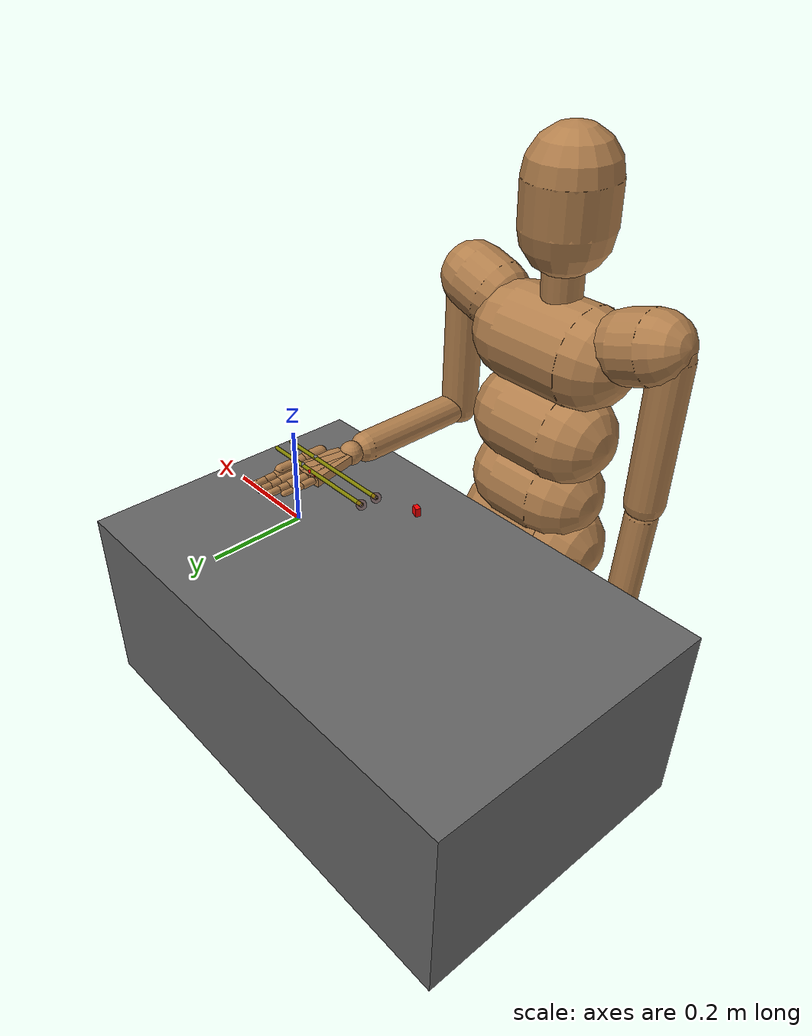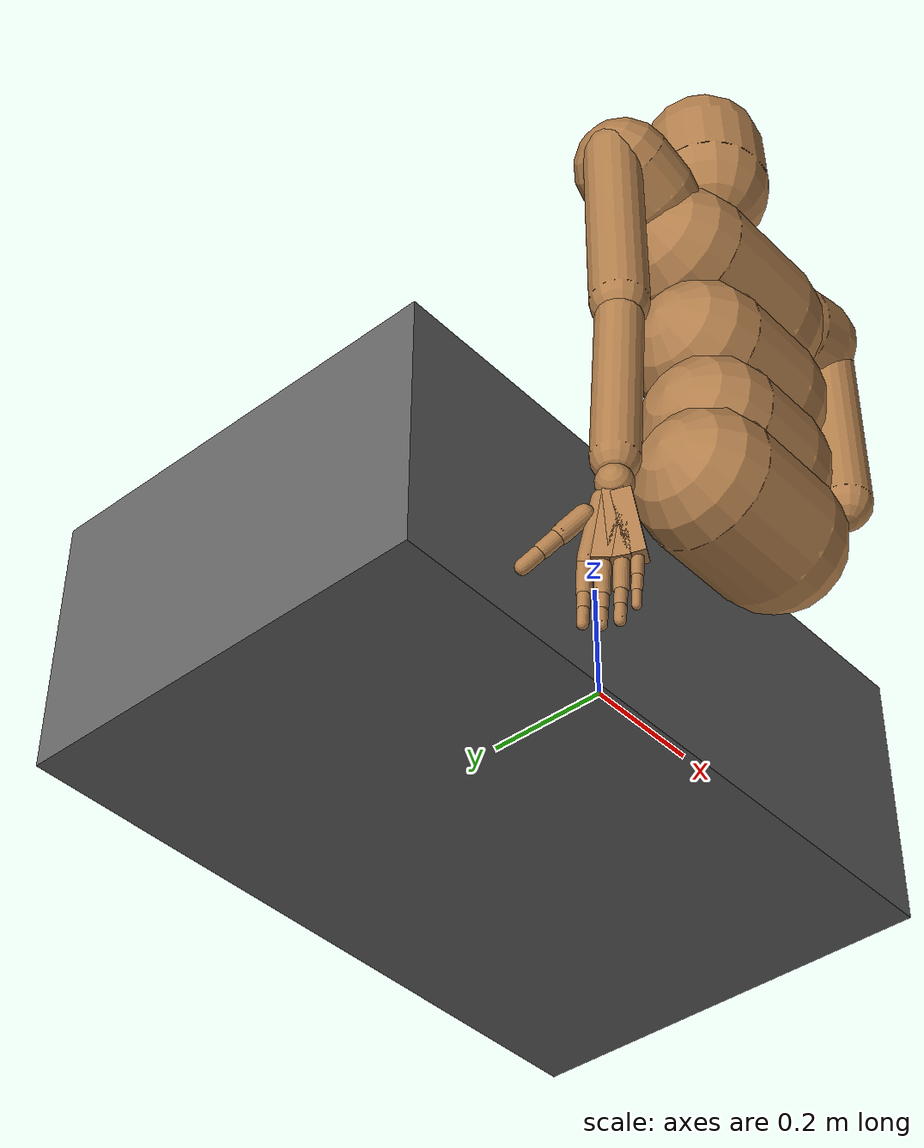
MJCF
<?xml version="1.0" encoding="utf-8"?>
<mujoco>
	<compiler angle="radian"></compiler>
	<size njmax="400" nconmax="400" nuser_jnt="1" nuser_site="1" nuser_tendon="1" nuser_sensor="1" nuser_actuator="16" nstack="600000"></size>
	<option timestep="0.01" iterations="20" apirate="200" impratio="1" noslip_iterations="100"></option>
	<asset>
		<material name="self" rgba=".7 .5 .3 1"></material>
		<material name="table" rgba=".4 .4 .4 1"></material>
		<material name="geom" texture="texgeom" texuniform="true"></material>
		<material name="MatGnd" reflectance="0.5" texture="texplane" texrepeat="2 2" texuniform="true"></material>
		<material name="MatPlane" reflectance="0.05" texture="texplane" texrepeat="1 1" texuniform="true"></material>
		<texture builtin="flat" height="1278" mark="cross" markrgb="1 1 1" name="texgeom" random="0.01" rgb1="0.8 0.6 0.4" rgb2="0.8 0.6 0.4" type="cube" width="127"></texture>
		<texture builtin="gradient" height="100" rgb1="1 1 1" rgb2="0 0 0" type="skybox" width="100"></texture>
		<texture name="texplane" type="2d" builtin="checker" rgb1=".2 .3 .4" rgb2=".1 0.15 0.2" width="512" height="512"></texture>
	</asset>
	<visual>
		<scale forcewidth="0.01" contactwidth="0.003"></scale>
	</visual>
	<default>
		<default class="Adroit">
			<geom friction="1 0.005 0.001" condim="3" margin="0.000" contype="1" conaffinity="1"></geom>
			<joint limited="true" damping="0.05" armature=".001" margin="0.01" frictionloss="0.001"></joint>
			<tendon limited="true"></tendon>
			<site size="0.005" rgba=".4 .9 .4 0"></site>
			<default class="D_Touch">
				<site type="box" size="0.009 0.004 0.013" pos="0 -.004 .018" rgba=".8 .8 .8 0" group="4"></site>
			</default>
			<default class="DC_Hand">
				<geom contype="1" conaffinity="0" material="self" group="2"></geom>
			</default>
		</default>
		<default class="humanoid">
			<geom type="capsule" material="self" group="2"></geom>
			<default class="stiff_medium">
				<joint stiffness="10" damping="2"></joint>
			</default>
			<default class="sensor_site">
				<site type="sphere" size="0.01" group="4" rgba="1 0 0 0"></site>
			</default>
		</default>
	</default>
	<contact>
	    <pair geom1="chopstick1" geom2="C_ff" margin="10" gap="100"></pair>
        <pair geom1="chopstick2" geom2="C_ff" margin="10" gap="100"></pair>
		<pair geom1="chopstick1" geom2="C_mf" margin="10" gap="100"></pair>
        <pair geom1="chopstick2" geom2="C_mf" margin="10" gap="100"></pair>
		<pair geom1="chopstick1" geom2="C_th" margin="10" gap="100"></pair>
        <pair geom1="chopstick2" geom2="C_th" margin="10" gap="100"></pair>
		<pair geom1="chopstick1" geom2="C_rf" margin="10" gap="100"></pair>
        <pair geom1="chopstick2" geom2="C_rf" margin="10" gap="100"></pair>
        <pair geom1="chopstick1" geom2="C_lf" margin="10" gap="100"></pair>
		<pair geom1="chopstick2" geom2="C_lf" margin="10" gap="100"></pair>
		<pair geom1="chopstick2" geom2="C_thm" margin="10" gap="100"></pair>

		<pair geom1="chopstick1" geom2="C_ffproximal" condim = "3" margin="0" gap="0"></pair>
		<pair geom1="chopstick1" geom2="C_ffproximal_trick" margin="10" gap="100"></pair>

		<pair geom1="chopstick2" geom2="C_ff_cmc" condim="4" margin="0" gap="0" friction="3 3" solimp="0.999 0.999 0.01" solref="0.01 1"></pair>
		<pair geom1="chopstick1" geom2="C_ffdistal" condim="4" margin="0" gap="0" friction="3 3" solimp="0.999 0.999 0.01" solref="0.01 1"></pair>
        <pair geom1="chopstick2" geom2="C_ffdistal" condim="4" margin="0" gap="0" friction="3 3" solimp="0.999 0.999 0.01" solref="0.01 1"></pair>
		<pair geom1="chopstick1" geom2="C_mfdistal" condim="4" margin="0" gap="0" friction="3 3" solimp="0.999 0.999 0.01" solref="0.01 1"></pair>
        <pair geom1="chopstick2" geom2="C_mfdistal" condim="4" margin="0" gap="0" friction="3 3" solimp="0.999 0.999 0.01" solref="0.01 1"></pair>
		<pair geom1="chopstick1" geom2="C_thdistal" condim="4" margin="0" gap="0" friction="3 3" solimp="0.999 0.999 0.01" solref="0.01 1"></pair>
		<pair geom1="chopstick2" geom2="C_thdistal" condim="4" margin="0" gap="0" friction="3 3" solimp="0.999 0.999 0.01" solref="0.01 1"></pair>
		<pair geom1="chopstick1" geom2="C_rfdistal" condim="4" margin="0" gap="0" friction="3 3" solimp="0.999 0.999 0.01" solref="0.01 1"></pair>
        <pair geom1="chopstick2" geom2="C_rfdistal" condim="4" margin="0" gap="0" friction="3 3" solimp="0.999 0.999 0.01" solref="0.01 1"></pair>
		<pair geom1="chopstick2" geom2="C_thmiddle" condim="4" margin="0" gap="0" friction="3 3" solimp="0.999 0.999 0.01" solref="0.01 1"></pair>
		<pair geom1="chopstick1" geom2="C_lfdistal" condim="4" margin="0" gap="0" friction="3 3" solimp="0.999 0.999 0.01" solref="0.01 1"></pair>
        <pair geom1="chopstick2" geom2="C_lfdistal" condim="4" margin="0" gap="0" friction="3 3" solimp="0.999 0.999 0.01" solref="0.01 1"></pair>

		<pair geom1="C_rfmiddle" geom2="C_mf" margin="10" gap="100"></pair>
		<pair geom1="C_rfmiddle" geom2="C_mfdistal" margin="10" gap="100"></pair>
		<pair geom1="C_rfmiddle" geom2="C_mfmiddle" margin="10" gap="100"></pair>
		<pair geom1="C_rfmiddle" geom2="C_mfproximal" margin="10" gap="100"></pair>
		<pair geom1="C_rfdistal" geom2="C_mf" margin="10" gap="100"></pair>
		<pair geom1="C_rfdistal" geom2="C_mfmiddle" margin="10" gap="100"></pair>
		<pair geom1="C_rfdistal" geom2="C_mfproximal" margin="10" gap="100"></pair>
		<pair geom1="C_rfproximal" geom2="C_mf" margin="10" gap="100"></pair>
		<pair geom1="C_rfproximal" geom2="C_mfdistal" margin="10" gap="100"></pair>
		<pair geom1="C_rfproximal" geom2="C_mfmiddle" margin="10" gap="100"></pair>
		<pair geom1="C_rfproximal" geom2="C_mfproximal" margin="10" gap="100"></pair>
		<pair geom1="C_mfmiddle" geom2="C_ff" margin="10" gap="100"></pair>
		<pair geom1="C_mfmiddle" geom2="C_ffdistal" margin="10" gap="100"></pair>
		<pair geom1="C_mfmiddle" geom2="C_ffmiddle" margin="10" gap="100"></pair>
		<pair geom1="C_mfmiddle" geom2="C_ffproximal" margin="10" gap="100"></pair>
		<pair geom1="C_mfdistal" geom2="C_ff" margin="10" gap="100"></pair>
		<pair geom1="C_mfdistal" geom2="C_ffmiddle" margin="10" gap="100"></pair>
		<pair geom1="C_mfdistal" geom2="C_ffproximal" margin="10" gap="100"></pair>
		<pair geom1="C_mfproximal" geom2="C_ff" margin="10" gap="100"></pair>
		<pair geom1="C_mfproximal" geom2="C_ffdistal" margin="10" gap="100"></pair>
		<pair geom1="C_mfproximal" geom2="C_ffmiddle" margin="10" gap="100"></pair>
		<pair geom1="C_mfproximal" geom2="C_ffproximal" margin="10" gap="100"></pair>
		<pair geom1="C_rfmiddle" geom2="C_lf" margin="10" gap="100"></pair>
		<pair geom1="C_rfmiddle" geom2="C_lfdistal" margin="10" gap="100"></pair>
		<pair geom1="C_rfmiddle" geom2="C_lfmiddle" margin="10" gap="100"></pair>
		<pair geom1="C_rfmiddle" geom2="C_lfproximal" margin="10" gap="100"></pair>
		<pair geom1="C_rfdistal" geom2="C_lf" margin="10" gap="100"></pair>
		<pair geom1="C_rfdistal" geom2="C_lfmiddle" margin="10" gap="100"></pair>
		<pair geom1="C_rfdistal" geom2="C_lfproximal" margin="10" gap="100"></pair>
		<pair geom1="C_rfproximal" geom2="C_lf" margin="10" gap="100"></pair>
		<pair geom1="C_rfproximal" geom2="C_lfdistal" margin="10" gap="100"></pair>
		<pair geom1="C_rfproximal" geom2="C_lfmiddle" margin="10" gap="100"></pair>
		<pair geom1="C_rfproximal" geom2="C_lfproximal" margin="10" gap="100"></pair>
	</contact>
	<tendon>
		<fixed name="T_FFJ3r" range="-0.018 0.018" user="1204">
			<joint joint="FFJ3" coef="0.010"></joint>
		</fixed>
		<fixed name="T_FFJ3l" range="-0.018 0.018" user="1205">
			<joint joint="FFJ3" coef="-0.010"></joint>
		</fixed>
		<fixed name="T_FFJ2u" range="-0.007 0.030" user="1202">
			<joint joint="FFJ2" coef="0.010"></joint>
		</fixed>
		<fixed name="T_FFJ2d" range="-0.030 0.007" user="1203">
			<joint joint="FFJ2" coef="-0.010"></joint>
		</fixed>
		<fixed name="T_FFJ1c" range="-0.0010 0.0010">
			<joint joint="FFJ0" coef="0.00705"></joint>
			<joint joint="FFJ1" coef="-0.00805"></joint>
		</fixed>
		<fixed name="T_FFJ1u" range="-0.007 0.030" user="1200">
			<joint joint="FFJ0" coef="0.00705"></joint>
			<joint joint="FFJ1" coef="0.00805"></joint>
		</fixed>
		<fixed name="T_FFJ1d" range="-0.030 0.007" user="1201">
			<joint joint="FFJ0" coef="-0.00705"></joint>
			<joint joint="FFJ1" coef="-0.00805"></joint>
		</fixed>
		<fixed name="T_MFJ3r" range="-0.018 0.018" user="1210">
			<joint joint="MFJ3" coef="0.010"></joint>
		</fixed>
		<fixed name="T_MFJ3l" range="-0.018 0.018" user="1211">
			<joint joint="MFJ3" coef="-0.010"></joint>
		</fixed>
		<fixed name="T_MFJ2u" range="-0.007 0.030" user="1208">
			<joint joint="MFJ2" coef="0.010"></joint>
		</fixed>
		<fixed name="T_MFJ2d" range="-0.030 0.007" user="1209">
			<joint joint="MFJ2" coef="-0.010"></joint>
		</fixed>
		<fixed name="T_MFJ1c" range="-0.001 0.001">
			<joint joint="MFJ0" coef="0.00705"></joint>
			<joint joint="MFJ1" coef="-0.00805"></joint>
		</fixed>
		<fixed name="T_MFJ1u" range="-0.007 0.030" user="1206">
			<joint joint="MFJ0" coef="0.00705"></joint>
			<joint joint="MFJ1" coef="0.00805"></joint>
		</fixed>
		<fixed name="T_MFJ1d" range="-0.030 0.007" user="1207">
			<joint joint="MFJ0" coef="-0.00705"></joint>
			<joint joint="MFJ1" coef="-0.00805"></joint>
		</fixed>
		<fixed name="T_RFJ3r" range="-0.018 0.018" user="1216">
			<joint joint="RFJ3" coef="0.010"></joint>
		</fixed>
		<fixed name="T_RFJ3l" range="-0.018 0.018" user="1217">
			<joint joint="RFJ3" coef="-0.010"></joint>
		</fixed>
		<fixed name="T_RFJ2u" range="-0.007 0.030" user="1214">
			<joint joint="RFJ2" coef="0.010"></joint>
		</fixed>
		<fixed name="T_RFJ2d" range="-0.030 0.007" user="1215">
			<joint joint="RFJ2" coef="-0.010"></joint>
		</fixed>
		<fixed name="T_RFJ1c" range="-0.001 0.001">
			<joint joint="RFJ0" coef="0.00705"></joint>
			<joint joint="RFJ1" coef="-0.00805"></joint>
		</fixed>
		<fixed name="T_RFJ1u" range="-0.007 0.030" user="1212">
			<joint joint="RFJ0" coef="0.00705"></joint>
			<joint joint="RFJ1" coef="0.00805"></joint>
		</fixed>
		<fixed name="T_RFJ1d" range="-0.030 0.007" user="1213">
			<joint joint="RFJ0" coef="-0.00705"></joint>
			<joint joint="RFJ1" coef="-0.00805"></joint>
		</fixed>
		<fixed name="T_THJ4a" range="-0.018 0.018" user="1234">
			<joint joint="THJ4" coef="0.01636"></joint>
		</fixed>
		<fixed name="T_THJ4c" range="-0.018 0.018" user="1235">
			<joint joint="THJ4" coef="-0.01636"></joint>
		</fixed>
		<fixed name="T_THJ3u" range="-0.007 0.030" user="1232">
			<joint joint="THJ3" coef="0.010"></joint>
		</fixed>
		<fixed name="T_THJ3d" range="-0.030 0.007" user="1233">
			<joint joint="THJ3" coef="-0.010"></joint>
		</fixed>
		<fixed name="T_THJ2u" range="-0.018 0.018" user="1230">
			<joint joint="THJ2" coef="0.011"></joint>
		</fixed>
		<fixed name="T_THJ2d" range="-0.018 0.018" user="1231">
			<joint joint="THJ2" coef="-0.011"></joint>
		</fixed>
		<fixed name="T_THJ1r" range="-0.018 0.018" user="1228">
			<joint joint="THJ1" coef="0.011"></joint>
		</fixed>
		<fixed name="T_THJ1l" range="-0.018 0.018" user="1229">
			<joint joint="THJ1" coef="-0.011"></joint>
		</fixed>
		<fixed name="T_THJ0r" range="-0.030 0.007" user="1226">
			<joint joint="THJ0" coef="0.009"></joint>
		</fixed>
		<fixed name="T_THJ0l" range="-0.007 0.030" user="1227">
			<joint joint="THJ0" coef="-0.009"></joint>
		</fixed>
		<fixed name="T_LFJ3r" range="-0.018 0.018">
			<joint joint="LFJ3" coef="0.010"></joint>
		</fixed>
		<fixed name="T_LFJ3l" range="-0.018 0.018">
			<joint joint="LFJ3" coef="-0.010"></joint>
		</fixed>
		<fixed name="T_LFJ2u" range="-0.007 0.030">
			<joint joint="LFJ2" coef="0.010"></joint>
		</fixed>
		<fixed name="T_LFJ2d" range="-0.030 0.007">
			<joint joint="LFJ2" coef="-0.010"></joint>
		</fixed>
		<fixed name="T_LFJ1c" range="-0.001 0.001">
			<joint joint="LFJ0" coef="0.00705"></joint>
			<joint joint="LFJ1" coef="-0.00805"></joint>
		</fixed>
		<fixed name="T_LFJ1u" range="-0.007 0.030">
			<joint joint="LFJ0" coef="0.00705"></joint>
			<joint joint="LFJ1" coef="0.00805"></joint>
		</fixed>
		<fixed name="T_LFJ1d" range="-0.030 0.007">
			<joint joint="LFJ0" coef="-0.00705"></joint>
			<joint joint="LFJ1" coef="-0.00805"></joint>
		</fixed>
	</tendon>
	<sensor>
		<touch name="sensor_end1" site="end1"></touch>
		<touch name="sensor_end2" site="end2"></touch>
		<touch name="sensor_th" site="S_thtip"></touch>
		<touch name="sensor_ff" site="S_fftip"></touch>
		<touch name="sensor_mf" site="S_mftip"></touch>
		<touch name="sensor_rf" site="S_rftip"></touch>
	</sensor>
	<equality>
		<connect body1="chopstick1" body2="thdistal" anchor="0.045 0.0 0.0025" active="false"></connect>
		<connect body1="chopstick2" body2="thmiddle" anchor="0.05 0.0 0.0025" active="false"></connect>
	</equality>
	<actuator>
		<motor name="A_UARM1" joint="UARM1" ctrlrange="-100   100" gear="1"></motor>
		<motor name="A_UARM2" joint="UARM2" ctrlrange="-100   100" gear="1"></motor>
		<motor name="A_UARM3" joint="UARM3" ctrlrange="-100   100" gear="1"></motor>
		<motor name="A_FARM1" joint="FARM1" ctrlrange="-100   100" gear="1"></motor>
		<motor name="A_WRJ0" user="2036" joint="WRJ0" ctrlrange="-50   50" gear="1"></motor>
		<motor name="A_WRJ1" user="2038" joint="WRJ1" ctrlrange="-50   50" gear="1"></motor>
		<motor name="A_WRJ2" joint="WRJ2" ctrlrange="-50   50" gear="1"></motor>
		<motor name="A_FFJ_CMC_X" joint="FFJ_CMC_X" ctrlrange="-10   10" gear="1"></motor>
		<motor name="A_FFJ_CMC_Z" joint="FFJ_CMC_Z" ctrlrange="-10   10" gear="1"></motor>
		<motor name="A_FFJ3" user="2004" joint="FFJ3" ctrlrange="-10   10" gear="1"></motor>
		<motor name="A_FFJ2" user="2002" joint="FFJ2" ctrlrange="-10      10 " gear="1"></motor>
		<motor name="A_FFJ1" user="2000" joint="FFJ1" ctrlrange="-10       10 " gear="1"></motor>
		<motor name="A_FFJ0" user="2000" joint="FFJ0" ctrlrange="-10     10 " gear="1"></motor>
		<motor name="A_MFJ_CMC_X" joint="MFJ_CMC_X" ctrlrange="-10   10" gear="1"></motor>
		<motor name="A_MFJ_CMC_Z" joint="MFJ_CMC_Z" ctrlrange="-10   10" gear="1"></motor>
		<motor name="A_MFJ3" user="2010" joint="MFJ3" ctrlrange="-10   10" gear="1"></motor>
		<motor name="A_MFJ2" user="2008" joint="MFJ2" ctrlrange="-10       10 " gear="1"></motor>
		<motor name="A_MFJ1" user="2006" joint="MFJ1" ctrlrange="-10       10 " gear="1"></motor>
		<motor name="A_MFJ0" user="2006" joint="MFJ0" ctrlrange="-10       10 " gear="1"></motor>
		<motor name="A_RFJ_CMC_X" joint="RFJ_CMC_X" ctrlrange="-10   10" gear="1"></motor>
		<motor name="A_RFJ_CMC_Z" joint="RFJ_CMC_Z" ctrlrange="-10   10" gear="1"></motor>
		<motor name="A_RFJ3" user="2016" joint="RFJ3" ctrlrange="-10   10" gear="1"></motor>
		<motor name="A_RFJ2" user="2014" joint="RFJ2" ctrlrange="-10       10 " gear="1"></motor>
		<motor name="A_RFJ1" user="2012" joint="RFJ1" ctrlrange="-10       10 " gear="1"></motor>
		<motor name="A_RFJ0" user="2012" joint="RFJ0" ctrlrange="-10       10 " gear="1"></motor>
		<motor name="A_THJ4" user="2034" joint="THJ4" ctrlrange="-10      10   " gear="1"></motor>
		<motor name="A_THJ3" user="2032" joint="THJ3" ctrlrange="-10      10 " gear="1"></motor>
		<motor name="A_THJ2" user="2030" joint="THJ2" ctrlrange="-10   10" gear="1"></motor>
		<motor name="A_THJ1" user="2028" joint="THJ1" ctrlrange="-10   10" gear="1"></motor>
		<motor name="A_THJ0" user="2026" joint="THJ0" ctrlrange="-10  10   " gear="1"></motor>
		<motor name="A_LFJ_CMC_X" joint="LFJ_CMC_X" ctrlrange="-10   10" gear="1"></motor>
		<motor name="A_LFJ_CMC_Z" joint="LFJ_CMC_Z" ctrlrange="-10   10" gear="1"></motor>
		<motor name="A_LFJ3" user="2022" joint="LFJ3" ctrlrange="-10      10 " gear="1"></motor>
		<motor name="A_LFJ2" user="2020" joint="LFJ2" ctrlrange="-10      10 " gear="1"></motor>
		<motor name="A_LFJ1" user="2019" joint="LFJ1" ctrlrange="-10      10 " gear="1"></motor>
		<motor name="A_LFJ0" user="2018" joint="LFJ0" ctrlrange="-10      10 " gear="1"></motor>
	</actuator>
	<worldbody>
		<light diffuse="1 1 1" dir="-1.3 1.3 -1.3" directional="true" exponent="1" pos="0 0 1.3" specular=".1 .1 .1" castshadow="false"></light>
		<geom name="table" pos="-0.24 0 -0.2" size="0.5 0.315 0.2" material="table" type="box" contype="1" conaffinity="1"></geom>

		<body name="hand mount" pos="0 -.45 0.2" euler="-1.57079632 0 0">
			<inertial mass="0.100" pos="0 0 0" diaginertia="0.001 0.001 0.001"></inertial>
			<body name="upperarm" childclass="Adroit" pos="0 -0.2 0">
				<joint name="UARM1" type="hinge" pos="0 0 0" axis="1 0 0" range="-1.57 1.57" damping="0" armature="1"></joint>
				<geom class="DC_Hand" name="C_upperarm1" type="sphere" size="0.001"></geom>
				<body name="upperarm2" pos="0 0 0">
					<geom class="DC_Hand" name="C_upperarm2" type="sphere" size="0.001"></geom>
					<joint name="UARM2" type="hinge" pos="0 0 0" axis="0 0 1" range="-1.57 0" damping="0" armature="1"></joint>
					<body name="upperarm3" pos="0 0 0">
						<joint name="UARM3" type="hinge" pos="0 0 0" axis="0 -1 0" range="-1.57 1.57" damping="0" armature="1"></joint>
						<geom class="DC_Hand" name="C_upperarm" type="capsule" size="0.04 0.15 " pos="0 0.15 0" euler="-1.57 0 0"></geom>
						<body name="forearm" childclass="Adroit" pos="0 0.3 0" euler="0 0 0">
							<inertial pos="0.001 -0.002 0.15" quat="0.982 -0.016 0.000 -0.188" mass="4" diaginertia="0.01 0.01 0.0075"></inertial>
							<joint name="FARM1" type="hinge" pos="0 0 0" axis="1 0 0" range="-1.57 1.57" damping="0" armature="1"></joint>
							<geom class="DC_Hand" name="C_forearm" type="capsule" size="0.0325 0.12 " pos="0 -.0 0.15" euler="0 0 -1.57"></geom>
							<body name="wrist" pos="0 0 0.3">
								<inertial pos="0.003 0.000 0.016" quat="0.504 0.496 0.495 0.504" mass="0.3" diaginertia="0.001 0.001 0.001"></inertial>
								<joint name="WRJ0" type="hinge" pos="0 0 0" axis="1 0 0" range="-1 1" damping="0" armature=".005" user="1122"></joint>
								<body name="wrist1" pos="0 0 0">
									<geom class="DC_Hand" name="C_wrist1" type="sphere" size="0.001"></geom>
									<joint name="WRJ1" type="hinge" pos="0 0 0" axis="0 1 0" range="-1.2 1.2" damping="0" armature=".005" user="1123"></joint>
									<body name="wrist2" pos="0 0 0">
										<joint name="WRJ2" type="hinge" pos="0 0 0" axis="0 0 1" range="-3.14 0" damping="0" armature=".005"></joint>
										<geom class="DC_Hand" name="C_wrist" type="sphere" pos="0 0 0.01" quat=".707 .707 0 0" size=".025"></geom>
										<body name="palm" pos="0 0 0.034">
											<body name="ff_cmc" pos="0.033 0 0.095">
												<joint name="FFJ_CMC_X" type="hinge" pos="-0.02 0 -0.095" axis="0.095 0 -0.02" range="0 0.001"></joint>
												<joint name="FFJ_CMC_Z" type="hinge" pos="-0.02 0 -0.095" axis="0.02 0 0.095" range="-0.001 0.001"></joint>
												<geom class="DC_Hand" name="C_ff_cmc" type="capsule" pos="-0.01 0 -0.0475" size="0.013 .0475" euler="0 0.16 0"></geom>
												<body name="ffknuckle" pos="0.0 0 0.0">
													<inertial pos="-0.000 0.000 0.000" quat="0.520 0.854 0.006 -0.003" mass="0.008" diaginertia="0.00001 0.00001 0.00001"></inertial>
													<joint name="FFJ3" type="hinge" pos="0 0 0" axis="0 1 0" range="-0.136 0.136" user="1103"></joint>
													<body name="ffproximal" pos="0 0 0">
														<inertial pos="0.000 0.000 0.023" quat="0.707 -0.004 0.004 0.707" mass="0.014" diaginertia="0.00001 0.00001 0.00001"></inertial>
														<joint name="FFJ2" type="hinge" pos="0 0 0" axis="1 0 0" range="0 1.571" user="1102"></joint>
														<geom class="DC_Hand" name="C_ffproximal" type="capsule" pos="0 0 .0225" size=".01 .0225"></geom>
														<geom class="DC_Hand" name="C_ffproximal_trick" type="capsule" pos="0 0 .0225" size=".01 .0225"></geom>
                                                        <body name="ffmiddle" pos="0 0 0.045">
															<inertial pos="-0.000 -0.000 0.011" quat="0.707 0.000 -0.000 0.707" mass="0.012" diaginertia="0.00001 0.00001 0.00001"></inertial>
															<joint name="FFJ1" type="hinge" pos="0 0 0" axis="1 0 0" range="0 1.571" user="1101"></joint>
															<geom class="DC_Hand" name="C_ffmiddle" type="capsule" pos="0 0 .0125" size=".00805 .0125"></geom>
															<body name="ffdistal" pos="0 0 0.025">
																<inertial pos="0 -0.000 0.015" quat="0.707 -0.003 0.003 0.707" mass="0.010" diaginertia="0.00001 0.00001 0.00001"></inertial>
																<joint name="FFJ0" type="hinge" pos="0 0 0" axis="1 0 0" range="0 1.571" user="1100"></joint>
																<geom class="DC_Hand" name="C_ffdistal" type="capsule" pos="0 -.00 .012" size=".0075 .011 " condim="4" euler="0 0 0"></geom>
																<geom class="DC_Hand" name="C_ff" type="sphere" pos="0 0 .0195" size=".0075 " condim="4"></geom>
																<site name="S_fftip" type="capsule" pos="0 -.00 .012" size=".0075 .011 " rgba = '0 0 0 0' euler="0 0 0"></site>
																<site class="D_Touch" name="Tch_fftip"></site>
															</body>
														</body>
													</body>
												</body>
											</body>
											<body name="mf_cmc" pos="0.011 0 0.099">
												<joint name="MFJ_CMC_X" type="hinge" pos="-0.011 0 -0.099" axis="0.099 0 -0.011" range="0 0.01"></joint>
												<joint name="MFJ_CMC_Z" type="hinge" pos="-0.011 0 -0.099" axis="0.011 0 0.099" range="-0.2 0.2"></joint>
												<geom class="DC_Hand" name="C_mf_cmc" type="box" pos="-0.0055 0 -0.0495" size=".013 0.01 .052" euler="0 0.11 0"></geom>
												<body name="mfknuckle" pos="0.0 0 0.0">
													<inertial pos="-0.000 0.000 0.000" quat="0.520 0.854 0.006 -0.003" mass="0.008" diaginertia="0.00001 0.00001 0.00001"></inertial>
													<joint name="MFJ3" type="hinge" pos="0 0 0" axis="0 1 0" range="-0.136 0.136" user="1107"></joint>
													<body name="mfproximal" pos="0 0 0">
														<inertial pos="0.000 0.000 0.023" quat="0.707 -0.004 0.004 0.707" mass="0.014" diaginertia="0.00001 0.00001 0.00001"></inertial>
														<joint name="MFJ2" type="hinge" pos="0 0 0" axis="1 0 0" range="0 1.571" user="1106"></joint>
														<geom class="DC_Hand" name="C_mfproximal" type="capsule" pos="0 0 .0225" size=".01 .0225"></geom>
														<body name="mfmiddle" pos="0 0 0.045">
															<inertial pos="-0.000 -0.000 0.012" quat="0.707 0.000 -0.000 0.707" mass="0.012" diaginertia="0.00001 0.00001 0.00001"></inertial>
															<joint name="MFJ1" type="hinge" pos="0 0 0" axis="1 0 0" range="0 1.571" user="1105"></joint>
															<geom class="DC_Hand" name="C_mfmiddle" type="capsule" pos="0 0 .0125" size=".00805 .0125"></geom>
															<body name="mfdistal" pos="0 0 0.025">
																<inertial pos="0 -0.000 0.015" quat="0.707 -0.003 0.003 0.707" mass="0.010" diaginertia="0.00001 0.00001 0.00001"></inertial>
																<joint name="MFJ0" type="hinge" pos="0 0 0" axis="1 0 0" range="0 1.571" user="1104"></joint>
																<geom class="DC_Hand" name="C_mfdistal" type="capsule" pos="0 0 .012" size=".0075 .011 " condim="4" euler="0 0 0"></geom>
																<geom class="DC_Hand" name="C_mf" type="sphere" pos="0 0 .025" size=".0075 " condim="4"></geom>
																<site name="S_mftip" type="capsule" pos="0 0 .012" size=".0075 .011 "  rgba = '0 0 0 0' euler="0 0 0"></site>
																<site class="D_Touch" name="Tch_mftip"></site>
															</body>
														</body>
													</body>
												</body>
											</body>
											<body name="rf_cmc" pos="-0.011 0 0.095">
												<joint name="RFJ_CMC_X" type="hinge" pos="0.011 0 -0.095" axis="0.095 0 0.011" range="0 0.2"></joint>
												<joint name="RFJ_CMC_Z" type="hinge" pos="0.011 0 -0.095" axis="-0.011 0 0.095" range="-0.0 0.69"></joint>
												<geom class="DC_Hand" name="C_rf_cmc" type="box" pos="0.0055 0 -0.0475" size=".013  0.01 .055" euler="0 -0.11 0"></geom>
												<body name="rfknuckle" pos="-0.0 0 0.0">
													<inertial pos="-0.000 0.000 0.000" quat="0.520 0.854 0.006 -0.003" mass="0.008" diaginertia="0.00001 0.00001 0.00001"></inertial>
													<joint name="RFJ3" type="hinge" pos="0 0 0" axis="0 1 0" range="-0.136 0.136" user="1111"></joint>
													<body name="rfproximal" pos="0 0 0">
														<inertial pos="0.000 0.000 0.023" quat="0.707 -0.004 0.004 0.707" mass="0.014" diaginertia="0.00001 0.00001 0.00001"></inertial>
														<joint name="RFJ2" type="hinge" pos="0 0 0" axis="1 0 0" range="0 1.571" user="1110"></joint>
														<geom class="DC_Hand" name="C_rfproximal" type="capsule" pos="0 0 .0225" size=".01 .0225"></geom>
														<body name="rfmiddle" pos="0 0 0.045">
															<inertial pos="-0.000 -0.000 0.012" quat="0.707 0.000 -0.000 0.707" mass="0.012" diaginertia="0.00001 0.00001 0.00001"></inertial>
															<joint name="RFJ1" type="hinge" pos="0 0 0" axis="1 0 0" range="0 1.571" user="1109"></joint>
															<geom class="DC_Hand" name="C_rfmiddle" type="capsule" pos="0 0 .0125" size=".00805 .0125"></geom>
															<body name="rfdistal" pos="0 0 0.025">
																<inertial pos="0 -0.000 0.015" quat="0.707 -0.003 0.003 0.707" mass="0.010" diaginertia="0.00001 0.00001 0.00001"></inertial>
																<joint name="RFJ0" type="hinge" pos="0 0 0" axis="1 0 0" range="0 1.571" user="1108"></joint>
																<geom class="DC_Hand" name="C_rfdistal" type="capsule" pos="0 -.0 .012" size=".0075 .011 " condim="4" euler="0 0 0"></geom>
																<geom class="DC_Hand" name="C_rf" type="sphere" pos="0 -.0 .016" size=".0075 " condim="4"></geom>
																<site name="S_rftip" type="capsule" pos="0 0 .012" size=".0075 .011 " rgba = '0 0 0 0' euler="0 0 0"></site>
																<site class="D_Touch" name="Tch_rftip"></site>
															</body>
														</body>
													</body>
												</body>
											</body>
											<body name="thbase" pos="0.034 -0.009 0.029" euler="0.  0. 0">
												<inertial pos="0 0 0" mass="0.010" diaginertia="0.00001 0.00001 0.00001"></inertial>
												<joint name="THJ4" type="hinge" pos="0 0 0" axis="0 0 -1" range="-0.01 0.01" user="1121"></joint>
												<joint name="THJ2" type="hinge" pos="0 0 0" axis="0 1 0" range="-1 1" user="1119"></joint>
												<joint name="THJ3" type="hinge" pos="0 0 0" axis="1 0 0" range="-0. 1" user="1120"></joint>
												<body name="thproximal" pos="0 0 0" euler = "0 0 -0.">

													<inertial pos="-0.000 -0.000 0.017" quat="0.982 -0.000 0.001 0.191" mass="0.016" diaginertia="0.00001 0.00001 0.00001"></inertial>
													<geom class="DC_Hand" name="C_thproximal" type="capsule" pos="0 0 .019" size=".013 .019"></geom>
													<body name="thmiddle" pos="0 0 0.038">
														<inertial pos="0.000 -0.000 0.016" quat="1.000 -0.001 -0.007 0.003" mass="0.016" diaginertia="0.00001 0.00001 0.00001"></inertial>
														<joint name="THJ1" type="hinge" pos="0 0 0" axis="0 1 0" range="-1.57 0" user="1118"></joint>
														<geom class="DC_Hand" name="C_thmiddle" type="capsule" pos="0 0 .016" size=".011 .016"></geom>
														<geom class="DC_Hand" name="C_thm" type="capsule" pos="0 0 .016" size=".011 .016"></geom>
														<body name="thdistal" pos="0 0 0.032">
															<inertial pos="0.000 -0.000 0.016" quat="0.999 -0.005 -0.047 0.005" mass="0.016" diaginertia="0.00001 0.00001 0.00001"></inertial>
															<joint name="THJ0" type="hinge" pos="0 0 0" axis="0 1 0" range="-1.571 -0.1" user="1117"></joint>
															<geom class="DC_Hand" name="C_thdistal" type="capsule" pos="0 0 .016837" size=".01 .015" condim="4" euler="0 0 0"></geom>
															<geom class="DC_Hand" name="C_th" type="sphere" pos="-0.01 -0.0 .021837" size=".003" rgba= ' 0 0 0 0'></geom>
															<site name="S_thtip" type="sphere" pos="-0.0 -0. .021837" size=".005 " rgba = '0 0 0 0' euler="0 0 0"></site>
															<site class="D_Touch" name="Tch_thtip" size="0.005 0.011 0.016" pos="-.005 0 0.02"></site>
														</body>
													</body>
												</body>
											</body>
											<body name="lf_cmc" pos="-0.03 0 0.095">
												<joint name="LFJ_CMC_X" type="hinge" pos="0.03 0 -0.095" axis="0.095 0 0.02" range="0 0.2"></joint>
												<joint name="LFJ_CMC_Z" type="hinge" pos="0.03 0 -0.095" axis="-0.02 0 0.095" range="0 0.9"></joint>
												<geom class="DC_Hand" name="C_lf_cmc" type="box" pos="0.01 0 -0.0475" size=".013 0.01 .052" euler="0 -0.2 0"></geom>
												<body name="lfknuckle" pos="-0.0 0 0.0">
													<inertial pos="-0.000 0.000 0.000" quat="0.520 0.854 0.006 -0.003" mass="0.008" diaginertia="0.00001 0.00001 0.00001"></inertial>
													<joint name="LFJ3" type="hinge" pos="0 0 0" axis="0 1 0" range="-0.136 0.136" user="1115"></joint>
													<body name="lfproximal" pos="0 0 0">
														<joint name="LFJ2" type="hinge" pos="0 0 0" axis="1 0 0" range="0 1.571" user="1114"></joint>
														<geom class="DC_Hand" name="C_lfproximal" type="capsule" pos="0 0 .0125" size=".008 .015"></geom>
														<body name="lfmiddle" pos="0 0 0.025">
															<joint name="LFJ1" type="hinge" pos="0 0 0" axis="1 0 0" range="0 1.571" user="1113"></joint>
															<geom class="DC_Hand" name="C_lfmiddle" type="capsule" pos="0 0 .0125" size=".00705 .0125"></geom>
															<body name="lfdistal" pos="0 0 0.025">
																<joint name="LFJ0" type="hinge" pos="0 0 0" axis="1 0 0" range="0 1.571"></joint>
																<geom class="DC_Hand" name="C_lfdistal" type="capsule" pos="0 0 .012" size=".006 .011 " condim="4" euler="0 0 0"></geom>
																<geom class="DC_Hand" name="C_lf" type="sphere" pos="0.00 0 .016" size=".006 "></geom>
																<site name="S_lftip" type="capsule" pos="0 0 .012" size=".006 .011 " rgba = '0 0 0 0' euler="0 0 0"></site>
															</body>
														</body>
													</body>
												</body>
											</body>
										</body>
									</body>
								</body>
							</body>
						</body>
					</body>
				</body>
			</body>
		</body>
		<body name="chopstick1" pos="-0.07 -0.0 0.14">
			<joint name="chopstick1" type="free" armature="0.0001"></joint>
			<geom name="chopstick1" density="1000" condim="4" size="0.004 0.13" pos="0.0 -0.0 0.0" type="capsule" quat="0.707 0 0.707 0" solimp="0.99 0.99 0.01" solref="0.01 1" friction="1 0.005 0.0001" rgba="0.5  0.5 0. 1"></geom>
			<geom name="chopstick1_end" density="1" size="0.004" pos="-0.13 -0.0 0.0" type="sphere" quat="0.707 0 0.707 0"></geom>
			<site name="end1" pos="-0.13 0.0 0.00" size=".01" type="sphere" rgba="0.5 0 0 0.2"></site>
			<site name="c_joint" pos="0.045 0.0 0.0" size=".004" type="sphere"></site>
			<site name="c_thtip" pos="0.045 0.0 0.0025" size=".004" type="sphere" user = '1'></site>
		</body>
		<body name="chopstick2" pos="-0.07 -0.035 0.14">
			<joint name="chopstick2" type="free" armature="0.0001"></joint>
			<geom name="chopstick2" density="1000" condim="4" size="0.004 0.13" pos="-0.0 -0.0 0.0" type="capsule" quat="0.707 0 0.707 0" solimp="0.99 0.99 0.01" solref="0.01 1" friction="1 0.005 0.0001" rgba="0.5  0.5 0. 1"></geom>
			<geom name="chopstick2_end" density="1" size="0.004" pos="-0.13 -0.0 0.0" type="sphere" quat="0.707 0 0.707 0"></geom>
			<site name="c_thmiddle" pos="0.05 0.0 0.0025" size=".004" type="sphere" user = '2'></site>
			<site name="end2" pos="-0.13 0.0 0.0" size=".01" type="sphere" rgba="0.5 0 0 0.2"></site>
			<site name="origin" pos="-0. 0.0 0.0" size=".01" type="sphere" rgba="1 0 0 0."></site>
		</body>
		<body name="chopstick2_v" pos="-0.07 -0.035 0.14">
			<joint name="chopstick2_v" type="free" armature="0.0001"></joint>
			<geom name="chopstick2_v" density="1000" condim="4" size="0.004 0.13" pos="0.0 -0.0 0.0" type="capsule" contype="0" conaffinity="0" solimp="0.99 0.99 0.01" solref="0.01 1" quat="0.707 0 0.707 0" friction="1 0.005 0.0001" rgba="0  0.5 0. 0.7"></geom>
			<site name="origin_v" pos="-0. 0.0 0.0" size=".01" type="sphere" rgba="0 0 0 0."></site>
			<site name="end2_v" pos="-0.13 0.0 0.00" size=".0025" type="sphere" group="4"></site>
			<body name="chopstick1_v" pos="0.045 0.035 0.0">
				<joint name="Rz1_v" armature=".01" type="hinge" pos="0 0 0" axis="0 0 1" range="-0.5 0.5"></joint>
				<geom name="chopstick1_v" density="1000" condim="4" size="0.004 0.13" pos="-0.045 -0.0 0.0" type="capsule" contype="0" conaffinity="0" solimp="0.99 0.99 0.01" solref="0.01 1" quat="0.707 0 0.707 0" friction="1 0.005 0.0001" rgba="0  0.5 0. 0.7"></geom>
				<site name="c_thtip_v" pos="0.0 0.0 0.0025" size=".004" type="sphere" rgba="1 0 0 1"></site>
				<site name="c_mftip_v" pos="-0.04 0.0 -0.0025" size=".004" type="sphere" rgba="1 0 0 1"></site>
				<site name="c_fftip_v" pos="-0.025 0.0025 0.00" size=".004" type="sphere" rgba="1 0 0 1"></site>
				<site name="end1_v" pos="-0.175 0.0 0.0" size=".0025" type="sphere" group="4"></site>
			</body>
		</body>

		<body name="root" pos="-0.25 -0.44 0.02" euler="1.57 0 0" childclass="humanoid">
			<body name="lowerback">
				<body name="upperback" pos="0.000565862 0.113213 0">
					<geom name="upperback" size="0.1 0.07" pos="0.000256264 -0.22 0" quat="0.707 0 0.707 0" contype="0" conaffinity="0"></geom>
					<body name="thorax" pos="0.000512528 0.11356 0.000">
						<geom name="thorax1" size="0.1 0.05" pos="-2.08988e-05 -0.22 0" quat="0.707 0 0.707 0" contype="0" conaffinity="0"></geom>
						<geom name="thorax2" size="0.1 0.06" pos="-2.08988e-05 -0.08 0" quat="0.707 0 0.707 0" contype="0" conaffinity="0"></geom>
						<body name="lowerneck" pos="-4.17976e-05 0.113945 0.0">
							<geom name="lowerneck" size="0.1 0.08" pos="-0.00165071 -0.02 0." quat="0.707 0 0.707 0" contype="0" conaffinity="0"></geom>
							<body name="upperneck" pos="-0.00330143 0.1104801 0.0">
								<geom name="upperneck" size="0.04 0.0525272" pos="0.000500875 0.0 -0.0" quat="0.724521 0.68921 -0.00767204 0" contype="0" conaffinity="0"></geom>
								<body name="head" pos="0.00100175 0.0899912 -0.00449288">
									<geom name="head" size="0.09 0.044104" pos="0.000341465 0.048184 -0.0" quat="0.717887 0.696142 -0.00493334 0" contype="0" conaffinity="0"></geom>
								</body>
							</body>
						</body>
						<body name="lclavicle" pos="-4.17976e-05 0.113945 0.00468037">
							<geom name="lclavicle" size="0.07 0.02986988" pos="0.19 0.0382636 0." quat="0.684 -0.1106 0.6984 0.1106" contype="0" conaffinity="0"></geom>
						</body>
						<body name="rclavicle" pos="-4.17976e-05 0.113945 0.00468037">
							<geom name="rclavicle" size="0.07 0.02986988" pos="-0.19 0.0382636 0." quat="0.698 0.110 0.698 -0.11" contype="0" conaffinity="0"></geom>
						</body>
					</body>
				</body>
			</body>
		</body>

		<body name="hand mount right" pos="-0.5 -.45 0.2" euler="-1.57079632 0 0">
			<body name="upperarm_right" childclass="Adroit" pos="0 -0.2 0">
				<body name="upperarm2_right" pos="0 0 0">
					<body name="upperarm3_right" pos="0 0 0" euler = '0 0 -0. '>
						<geom class="DC_Hand" name="C_upperarm_right" type="capsule" size="0.04 0.15 " pos="0 0.15 0" euler="-1.57 0 0"></geom>
						<body name="forearm_right" childclass="Adroit" pos="0 0.3 0" euler = '-1.5 -0. -0.5 '>
							<geom class="DC_Hand" name="C_forearm_right" type="capsule" size="0.0325 0.12 " pos="0 -.0 0.15" euler="0 0 -1.57"></geom>
							<body name="wrist_right" pos="0 0 0.3" euler = '0 0 0'>
								<body name="wrist1_right" pos="0 0 0">
									<geom class="DC_Hand" name="C_wrist1_right" type="sphere" size="0.001"></geom>
									<body name="wrist2_right" pos="0 0 0" euler = '0  0 -1.57 '>
										<geom class="DC_Hand" name="C_wrist_right" type="sphere" pos="0 0 0.01" quat=".707 .707 0 0" size=".025"></geom>
										<body name="palm_right" pos="0 0 0.034">
											<body name="ff_cmc_right" pos="0.033 0 0.095">
												<geom class="DC_Hand" name="C_ff_cmc_right" type="capsule" pos="-0.01 0 -0.0475" size="0.013 .0475" euler="0 0.16 0"></geom>
												<body name="ffknuckle_right" pos="0.0 0 0.0">
													<body name="ffproximal_right" pos="0 0 0">
														<inertial pos="0.000 0.000 0.023" quat="0.707 -0.004 0.004 0.707" mass="0.014" diaginertia="0.00001 0.00001 0.00001"></inertial>
														<geom class="DC_Hand" name="C_ffproximal_right" type="capsule" pos="0 0 .0225" size=".01 .0225"></geom>
														<body name="ffmiddle_right" pos="0 0 0.045">
															<geom class="DC_Hand" name="C_ffmiddle_right" type="capsule" pos="0 0 .0125" size=".00805 .0125"></geom>
															<body name="ffdistal_right" pos="0 0 0.025">
																<geom class="DC_Hand" name="C_ffdistal_right" type="capsule" pos="0 -.00 .012" size=".0075 .011 " condim="4" euler="0 0 0"></geom>
															</body>
														</body>
													</body>
												</body>
											</body>
											<body name="mf_cmc_right" pos="0.011 0 0.099">
												<geom class="DC_Hand" name="C_mf_cmc_right" type="box" pos="-0.0055 0 -0.0495" size=".013 0.013 .052" euler="0 0.11 0"></geom>
												<body name="mfknuckle_right" pos="0.0 0 0.0">
													<inertial pos="-0.000 0.000 0.000" quat="0.520 0.854 0.006 -0.003" mass="0.008" diaginertia="0.00001 0.00001 0.00001"></inertial>
													<body name="mfproximal_right" pos="0 0 0">
														<geom class="DC_Hand" name="C_mfproximal_right" type="capsule" pos="0 0 .0225" size=".01 .0225"></geom>
														<body name="mfmiddle_right" pos="0 0 0.045">
															<geom class="DC_Hand" name="C_mfmiddle_right" type="capsule" pos="0 0 .0125" size=".00805 .0125"></geom>
															<body name="mfdistal_right" pos="0 0 0.025">
																<geom class="DC_Hand" name="C_mfdistal_right" type="capsule" pos="0 0 .012" size=".0075 .011 " condim="4" euler="0 0 0"></geom>
															</body>
														</body>
													</body>
												</body>
											</body>
											<body name="rf_cmc_right" pos="-0.011 0 0.095">
												<geom class="DC_Hand" name="C_rf_cmc_right" type="box" pos="0.0055 0 -0.0475" size=".013  0.013 .055" euler="0 -0.11 0"></geom>
												<body name="rfknuckle_right" pos="-0.0 0 0.0">
													<body name="rfproximal_right" pos="0 0 0">
														<geom class="DC_Hand" name="C_rfproximal_right" type="capsule" pos="0 0 .0225" size=".01 .0225"></geom>
														<body name="rfmiddle_right" pos="0 0 0.045">
															<geom class="DC_Hand" name="C_rfmiddle_right" type="capsule" pos="0 0 .0125" size=".00805 .0125"></geom>
															<body name="rfdistal_right" pos="0 0 0.025">
																<geom class="DC_Hand" name="C_rfdistal_right" type="capsule" pos="0 -.0 .012" size=".0075 .011 " condim="4" euler="0 0 0"></geom>
															</body>
														</body>
													</body>
												</body>
											</body>
											<body name="thbase_right" pos="0.034 -0.009 0.029" axisangle="0  1 0  0.785">
												<body name="thproximal_right" pos="0 0 0">
													<geom class="DC_Hand" name="C_thproximal_right" type="capsule" pos="0 0 .019" size=".013 .019"></geom>
													<body name="thmiddle_right" pos="0 0 0.038">
														<geom class="DC_Hand" name="C_thm_right" type="capsule" pos="0 0 .016" size=".011 .016"></geom>
														<body name="thdistal_right" pos="0 0 0.032">
															<geom class="DC_Hand" name="C_thdistal_right" type="capsule" pos="0 0 .016837" size=".01 .015" condim="4" euler="0 0 0"></geom>
														</body>
													</body>
												</body>
											</body>
											<body name="lf_cmc_right" pos="-0.03 0 0.095">
												<geom class="DC_Hand" name="C_lf_cmc_right" type="box" pos="0.01 0 -0.0475" size=".013 0.013 .052" euler="0 -0.2 0"></geom>
												<body name="lfknuckle_right" pos="-0.0 0 0.0">
													<body name="lfproximal_right" pos="0 0 0">
														<geom class="DC_Hand" name="C_lfproximal_right" type="capsule" pos="0 0 .0125" size=".008 .015"></geom>
														<body name="lfmiddle_right" pos="0 0 0.025">
															<geom class="DC_Hand" name="C_lfmiddle_right" type="capsule" pos="0 0 .0125" size=".00705 .0125"></geom>
															<body name="lfdistal_right" pos="0 0 0.025">
																<geom class="DC_Hand" name="C_lfdistal_right" type="capsule" pos="0 0 .012" size=".006 .011 " condim="4" euler="0 0 0"></geom>
															</body>
														</body>
													</body>
												</body>
											</body>
										</body>
									</body>
								</body>
							</body>
						</body>
					</body>
				</body>
			</body>
		</body>

		<body name="object_0" pos="-0.14571065125354277 -0.19032144796572237 0.009621365595170437" quat="0.8191885240174461 0.0 0.0 0.5735243343731092">
			<joint name="object_0" type="free" armature="0.00001"></joint>
			<geom name="object_0" size="0.0055470899463877735 0.008145239307239954 0.009621365595170437" pos="0 0 0" type="box" rgba="1 0 0 1"></geom>
		</body>
	</worldbody>
</mujoco>
